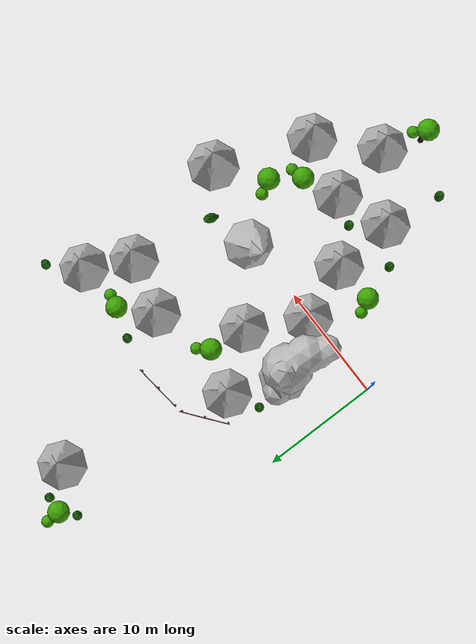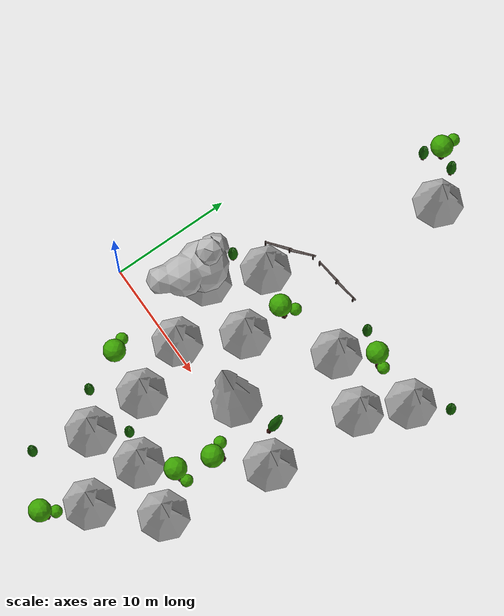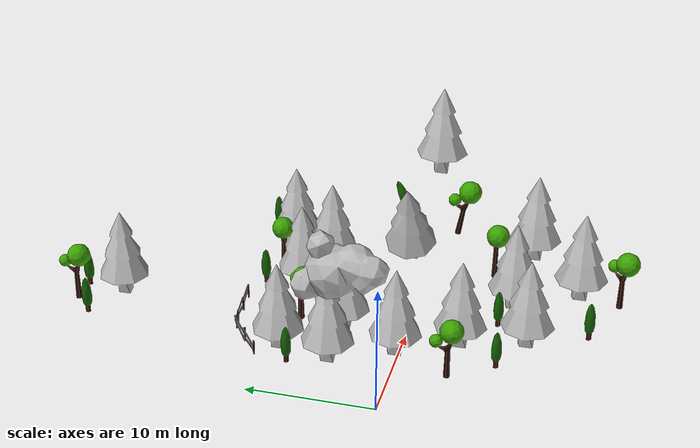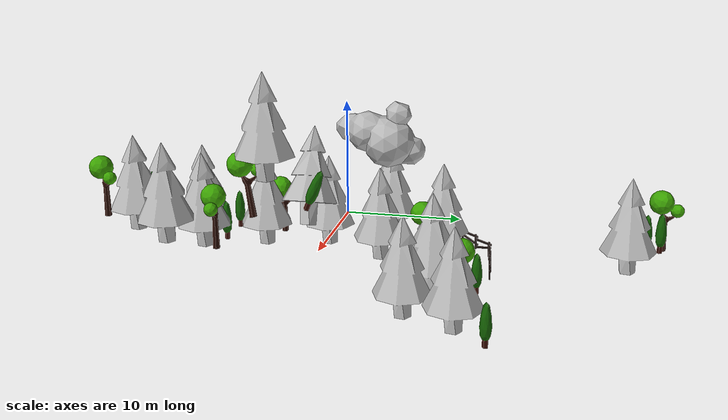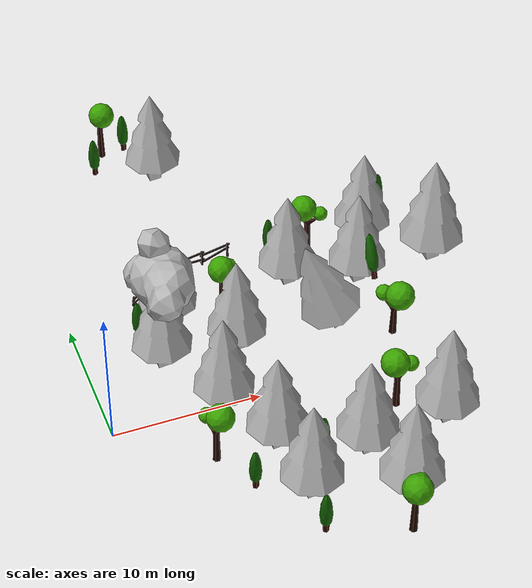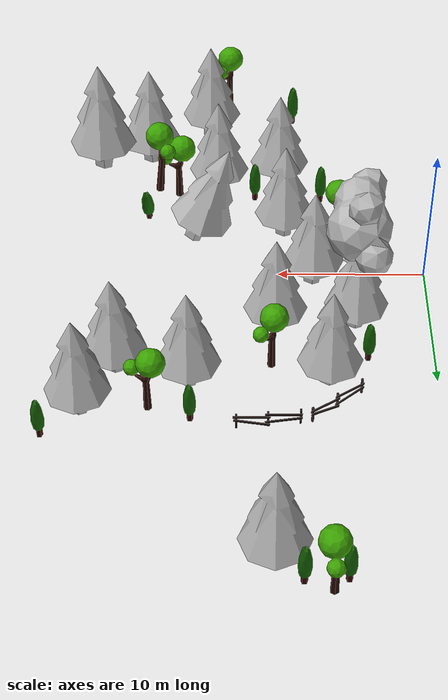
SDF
<sdf version="1.9">
 <world name="test">
  <include><uri>model://rocks_3</uri><name>rocks3</name><pose>5 5 6 0 0 0</pose></include>
  <model name="lowpolytree_1">
   <static>true</static>
   <link name="lowpolytree_1">
    <collision name="lowpolytree_1_collision">
     <geometry>
      <mesh>
       <uri>file:///home/ace-rv/rs1_ros2_ws/install/rs1_environment/share/rs1_environment/models/lowpolytree_1/model://lowpolytree_1/meshes/lowpolytree_1.dae</uri>
      </mesh>
     </geometry>
    </collision>
    <visual name="lowpolytree_1_visual">
     <geometry>
      <mesh>
       <uri>file:///home/ace-rv/rs1_ros2_ws/install/rs1_environment/share/rs1_environment/models/lowpolytree_1/model://lowpolytree_1/meshes/lowpolytree_1.dae</uri>
      </mesh>
     </geometry>
    </visual>
    <inertial>
     <mass>1</mass>
     <inertia><ixx>1</ixx><ixy>0</ixy><ixz>0</ixz><iyy>1</iyy><iyz>0</iyz><izz>1</izz></inertia>
    </inertial>
   </link>
   <pose>5 5 0.320342 0 -0 0</pose>
  </model>
  <model name="lowpolytree_4">
   <static>true</static>
   <link name="lowpolytree_4">
    <collision name="lowpolytree_4_collision">
     <geometry>
      <mesh>
       <uri>file:///home/ace-rv/rs1_ros2_ws/install/rs1_environment/share/rs1_environment/models/lowpolytree_4/model://lowpolytree_4/meshes/lowpolytree_4.dae</uri>
      </mesh>
     </geometry>
    </collision>
    <visual name="lowpolytree_4_visual">
     <geometry>
      <mesh>
       <uri>file:///home/ace-rv/rs1_ros2_ws/install/rs1_environment/share/rs1_environment/models/lowpolytree_4/model://lowpolytree_4/meshes/lowpolytree_4.dae</uri>
      </mesh>
     </geometry>
    </visual>
    <inertial>
     <mass>1</mass>
     <inertia><ixx>1</ixx><ixy>0</ixy><ixz>0</ixz><iyy>1</iyy><iyz>0</iyz><izz>1</izz></inertia>
    </inertial>
   </link>
   <pose>4.28079 8.07195 0 0 -0 0</pose>
  </model>
  <model name="lowpolytree_5">
   <static>true</static>
   <link name="lowpolytree_5">
    <collision name="lowpolytree_5_collision">
     <geometry>
      <mesh>
       <uri>file:///home/ace-rv/rs1_ros2_ws/install/rs1_environment/share/rs1_environment/models/lowpolytree_5/model://lowpolytree_5/meshes/lowpolytree_5.dae</uri>
      </mesh>
     </geometry>
    </collision>
    <visual name="lowpolytree_5_visual">
     <geometry>
      <mesh>
       <uri>file:///home/ace-rv/rs1_ros2_ws/install/rs1_environment/share/rs1_environment/models/lowpolytree_5/model://lowpolytree_5/meshes/lowpolytree_5.dae</uri>
      </mesh>
     </geometry>
    </visual>
    <inertial>
     <mass>1</mass>
     <inertia><ixx>1</ixx><ixy>0</ixy><ixz>0</ixz><iyy>1</iyy><iyz>0</iyz><izz>1</izz></inertia>
    </inertial>
   </link>
   <pose>10.4934 8.71524 0 0 0 -0.761097</pose>
  </model>
  <model name="lowpolytree_1_1">
   <static>true</static>
   <link name="lowpolytree_1">
    <collision name="lowpolytree_1_collision">
     <geometry><mesh><uri>model://lowpolytree_1</uri></mesh></geometry>
    </collision>
    <visual name="lowpolytree_1_visual">
     <geometry>
      <mesh>
       <uri>file:///home/ace-rv/rs1_ros2_ws/install/rs1_environment/share/rs1_environment/models/lowpolytree_1/model://lowpolytree_1/meshes/lowpolytree_1.dae</uri>
      </mesh>
     </geometry>
    </visual>
    <inertial>
     <mass>1</mass>
     <inertia><ixx>1</ixx><ixy>0</ixy><ixz>0</ixz><iyy>1</iyy><iyz>0</iyz><izz>1</izz></inertia>
    </inertial>
   </link>
   <pose>10.2389 5.09046 0 0 -0 0</pose>
  </model>
  <model name="lowpolytree_1_3">
   <static>true</static>
   <link name="lowpolytree_1">
    <collision name="lowpolytree_1_collision">
     <geometry>
      <mesh>
       <uri>file:///home/ace-rv/rs1_ros2_ws/install/rs1_environment/share/rs1_environment/models/lowpolytree_1/model://lowpolytree_1/meshes/lowpolytree_1.dae</uri>
      </mesh>
     </geometry>
    </collision>
    <visual name="lowpolytree_1_visual">
     <geometry>
      <mesh>
       <uri>file:///home/ace-rv/rs1_ros2_ws/install/rs1_environment/share/rs1_environment/models/lowpolytree_1/model://lowpolytree_1/meshes/lowpolytree_1.dae</uri>
      </mesh>
     </geometry>
    </visual>
    <inertial>
     <mass>1</mass>
     <inertia><ixx>1</ixx><ixy>0</ixy><ixz>0</ixz><iyy>1</iyy><iyz>0</iyz><izz>1</izz></inertia>
    </inertial>
   </link>
   <pose>6.82053 9.49544 -0.364963 0 -0 0</pose>
  </model>
  <model name="fence_2_1">
   <static>true</static>
   <link name="fence_2">
    <collision name="fence_2_collision">
     <geometry>
      <mesh>
       <uri>file:///home/ace-rv/rs1_ros2_ws/install/rs1_environment/share/rs1_environment/models/fence_2/model://fence_2/meshes/fence_2.dae</uri>
      </mesh>
     </geometry>
    </collision>
    <visual name="fence_2_visual">
     <geometry>
      <mesh>
       <uri>file:///home/ace-rv/rs1_ros2_ws/install/rs1_environment/share/rs1_environment/models/fence_2/model://fence_2/meshes/fence_2.dae</uri>
      </mesh>
     </geometry>
    </visual>
    <inertial>
     <mass>1</mass>
     <inertia><ixx>1</ixx><ixy>0</ixy><ixz>0</ixz><iyy>1</iyy><iyz>0</iyz><izz>1</izz></inertia>
    </inertial>
   </link>
   <pose>7.99353 13.3338 -0.1802 0 0 -0.906578</pose>
  </model>
  <model name="fence_2_1_1">
   <static>true</static>
   <link name="fence_2">
    <collision name="fence_2_collision">
     <geometry>
      <mesh>
       <uri>file:///home/ace-rv/rs1_ros2_ws/install/rs1_environment/share/rs1_environment/models/fence_2/model://fence_2/meshes/fence_2.dae</uri>
      </mesh>
     </geometry>
    </collision>
    <visual name="fence_2_visual">
     <geometry>
      <mesh>
       <uri>file:///home/ace-rv/rs1_ros2_ws/install/rs1_environment/share/rs1_environment/models/fence_2/model://fence_2/meshes/fence_2.dae</uri>
      </mesh>
     </geometry>
    </visual>
    <inertial>
     <mass>1</mass>
     <inertia><ixx>1</ixx><ixy>0</ixy><ixz>0</ixz><iyy>1</iyy><iyz>0</iyz><izz>1</izz></inertia>
    </inertial>
   </link>
   <pose>12.681 13.9029 -0.1802 0 0 -1.45848</pose>
  </model>
  <model name="lowpolytree_1_5">
   <static>true</static>
   <link name="lowpolytree_1">
    <collision name="lowpolytree_1_collision">
     <geometry>
      <mesh>
       <uri>file:///home/ace-rv/rs1_ros2_ws/install/rs1_environment/share/rs1_environment/models/lowpolytree_1/model://lowpolytree_1/meshes/lowpolytree_1.dae</uri>
      </mesh>
     </geometry>
    </collision>
    <visual name="lowpolytree_1_visual">
     <geometry>
      <mesh>
       <uri>file:///home/ace-rv/rs1_ros2_ws/install/rs1_environment/share/rs1_environment/models/lowpolytree_1/model://lowpolytree_1/meshes/lowpolytree_1.dae</uri>
      </mesh>
     </geometry>
    </visual>
    <inertial>
     <mass>1</mass>
     <inertia><ixx>1</ixx><ixy>0</ixy><ixz>0</ixz><iyy>1</iyy><iyz>0</iyz><izz>1</izz></inertia>
    </inertial>
   </link>
   <pose>9.85882 -9.4139 0.947991 0 -0 0</pose>
  </model>
  <model name="lowpolytree_1_5_1">
   <static>true</static>
   <link name="lowpolytree_1">
    <collision name="lowpolytree_1_collision">
     <geometry>
      <mesh>
       <uri>file:///home/ace-rv/rs1_ros2_ws/install/rs1_environment/share/rs1_environment/models/lowpolytree_1/model://lowpolytree_1/meshes/lowpolytree_1.dae</uri>
      </mesh>
     </geometry>
    </collision>
    <visual name="lowpolytree_1_visual">
     <geometry>
      <mesh>
       <uri>file:///home/ace-rv/rs1_ros2_ws/install/rs1_environment/share/rs1_environment/models/lowpolytree_1/model://lowpolytree_1/meshes/lowpolytree_1.dae</uri>
      </mesh>
     </geometry>
    </visual>
    <inertial>
     <mass>1</mass>
     <inertia><ixx>1</ixx><ixy>0</ixy><ixz>0</ixz><iyy>1</iyy><iyz>0</iyz><izz>1</izz></inertia>
    </inertial>
   </link>
   <pose>14.1887 -7.74744 1.52084 0 -0 0</pose>
  </model>
  <model name="lowpolytree_1_5_1_1">
   <static>true</static>
   <link name="lowpolytree_1">
    <collision name="lowpolytree_1_collision">
     <geometry>
      <mesh>
       <uri>file:///home/ace-rv/rs1_ros2_ws/install/rs1_environment/share/rs1_environment/models/lowpolytree_1/model://lowpolytree_1/meshes/lowpolytree_1.dae</uri>
      </mesh>
     </geometry>
    </collision>
    <visual name="lowpolytree_1_visual">
     <geometry>
      <mesh>
       <uri>file:///home/ace-rv/rs1_ros2_ws/install/rs1_environment/share/rs1_environment/models/lowpolytree_1/model://lowpolytree_1/meshes/lowpolytree_1.dae</uri>
      </mesh>
     </geometry>
    </visual>
    <inertial>
     <mass>1</mass>
     <inertia><ixx>1</ixx><ixy>0</ixy><ixz>0</ixz><iyy>1</iyy><iyz>0</iyz><izz>1</izz></inertia>
    </inertial>
   </link>
   <pose>18.9752 -8.66418 3.4867 0 -0 0</pose>
  </model>
  <model name="lowpolytree_5_1">
   <static>true</static>
   <link name="lowpolytree_5">
    <collision name="lowpolytree_5_collision">
     <geometry>
      <mesh>
       <uri>file:///home/ace-rv/rs1_ros2_ws/install/rs1_environment/share/rs1_environment/models/lowpolytree_5/model://lowpolytree_5/meshes/lowpolytree_5.dae</uri>
      </mesh>
     </geometry>
    </collision>
    <visual name="lowpolytree_5_visual">
     <geometry>
      <mesh>
       <uri>file:///home/ace-rv/rs1_ros2_ws/install/rs1_environment/share/rs1_environment/models/lowpolytree_5/model://lowpolytree_5/meshes/lowpolytree_5.dae</uri>
      </mesh>
     </geometry>
    </visual>
    <inertial>
     <mass>1</mass>
     <inertia><ixx>1</ixx><ixy>0</ixy><ixz>0</ixz><iyy>1</iyy><iyz>0</iyz><izz>1</izz></inertia>
    </inertial>
   </link>
   <pose>13.5833 -15.9725 3.07385 0 0 -0.595097</pose>
  </model>
  <model name="lowpolytree_4_1">
   <static>true</static>
   <link name="lowpolytree_4">
    <collision name="lowpolytree_4_collision">
     <geometry>
      <mesh>
       <uri>file:///home/ace-rv/rs1_ros2_ws/install/rs1_environment/share/rs1_environment/models/lowpolytree_4/model://lowpolytree_4/meshes/lowpolytree_4.dae</uri>
      </mesh>
     </geometry>
    </collision>
    <visual name="lowpolytree_4_visual">
     <geometry>
      <mesh>
       <uri>file:///home/ace-rv/rs1_ros2_ws/install/rs1_environment/share/rs1_environment/models/lowpolytree_4/model://lowpolytree_4/meshes/lowpolytree_4.dae</uri>
      </mesh>
     </geometry>
    </visual>
    <inertial>
     <mass>1</mass>
     <inertia><ixx>1</ixx><ixy>0</ixy><ixz>0</ixz><iyy>1</iyy><iyz>0</iyz><izz>1</izz></inertia>
    </inertial>
   </link>
   <pose>11.6205 -6.9588 1.12121 0 -0 0</pose>
  </model>
  <model name="lowpolytree_4_3">
   <static>true</static>
   <link name="lowpolytree_4">
    <collision name="lowpolytree_4_collision">
     <geometry>
      <mesh>
       <uri>file:///home/ace-rv/rs1_ros2_ws/install/rs1_environment/share/rs1_environment/models/lowpolytree_4/model://lowpolytree_4/meshes/lowpolytree_4.dae</uri>
      </mesh>
     </geometry>
    </collision>
    <visual name="lowpolytree_4_visual">
     <geometry>
      <mesh>
       <uri>file:///home/ace-rv/rs1_ros2_ws/install/rs1_environment/share/rs1_environment/models/lowpolytree_4/model://lowpolytree_4/meshes/lowpolytree_4.dae</uri>
      </mesh>
     </geometry>
    </visual>
    <inertial>
     <mass>1</mass>
     <inertia><ixx>1</ixx><ixy>0</ixy><ixz>0</ixz><iyy>1</iyy><iyz>0</iyz><izz>1</izz></inertia>
    </inertial>
   </link>
   <pose>8.85614 -14.0887 2.83124 0 -0 0</pose>
  </model>
  <model name="lowpolytree_1_5_1_1_1">
   <static>true</static>
   <link name="lowpolytree_1">
    <collision name="lowpolytree_1_collision">
     <geometry>
      <mesh>
       <uri>file:///home/ace-rv/rs1_ros2_ws/install/rs1_environment/share/rs1_environment/models/lowpolytree_1/model://lowpolytree_1/meshes/lowpolytree_1.dae</uri>
      </mesh>
     </geometry>
    </collision>
    <visual name="lowpolytree_1_visual">
     <geometry>
      <mesh>
       <uri>file:///home/ace-rv/rs1_ros2_ws/install/rs1_environment/share/rs1_environment/models/lowpolytree_1/model://lowpolytree_1/meshes/lowpolytree_1.dae</uri>
      </mesh>
     </geometry>
    </visual>
    <inertial>
     <mass>1</mass>
     <inertia><ixx>1</ixx><ixy>0</ixy><ixz>0</ixz><iyy>1</iyy><iyz>0</iyz><izz>1</izz></inertia>
    </inertial>
   </link>
   <pose>14.8335 -12.8151 2.75438 0 -0 0</pose>
  </model>
  <model name="lowpolytree_5_1_1">
   <static>true</static>
   <link name="lowpolytree_5">
    <collision name="lowpolytree_5_collision">
     <geometry>
      <mesh>
       <uri>file:///home/ace-rv/rs1_ros2_ws/install/rs1_environment/share/rs1_environment/models/lowpolytree_5/model://lowpolytree_5/meshes/lowpolytree_5.dae</uri>
      </mesh>
     </geometry>
    </collision>
    <visual name="lowpolytree_5_visual">
     <geometry>
      <mesh>
       <uri>file:///home/ace-rv/rs1_ros2_ws/install/rs1_environment/share/rs1_environment/models/lowpolytree_5/model://lowpolytree_5/meshes/lowpolytree_5.dae</uri>
      </mesh>
     </geometry>
    </visual>
    <inertial>
     <mass>1</mass>
     <inertia><ixx>1</ixx><ixy>0</ixy><ixz>0</ixz><iyy>1</iyy><iyz>0</iyz><izz>1</izz></inertia>
    </inertial>
   </link>
   <pose>16.9455 -5.77316 2.38542 0 0 -1.38507</pose>
  </model>
  <model name="lowpolytree_1_5_1_2">
   <static>true</static>
   <link name="lowpolytree_1">
    <collision name="lowpolytree_1_collision">
     <geometry>
      <mesh>
       <uri>file:///home/ace-rv/rs1_ros2_ws/install/rs1_environment/share/rs1_environment/models/lowpolytree_1/model://lowpolytree_1/meshes/lowpolytree_1.dae</uri>
      </mesh>
     </geometry>
    </collision>
    <visual name="lowpolytree_1_visual">
     <geometry>
      <mesh>
       <uri>file:///home/ace-rv/rs1_ros2_ws/install/rs1_environment/share/rs1_environment/models/lowpolytree_1/model://lowpolytree_1/meshes/lowpolytree_1.dae</uri>
      </mesh>
     </geometry>
    </visual>
    <inertial>
     <mass>1</mass>
     <inertia><ixx>1</ixx><ixy>0</ixy><ixz>0</ixz><iyy>1</iyy><iyz>0</iyz><izz>1</izz></inertia>
    </inertial>
   </link>
   <pose>7.6573 0.353314 -0.004936 0 -0 0</pose>
  </model>
  <model name="lowpolytree_1_5_1_4">
   <static>true</static>
   <link name="lowpolytree_1">
    <collision name="lowpolytree_1_collision">
     <geometry>
      <mesh>
       <uri>file:///home/ace-rv/rs1_ros2_ws/install/rs1_environment/share/rs1_environment/models/lowpolytree_1/model://lowpolytree_1/meshes/lowpolytree_1.dae</uri>
      </mesh>
     </geometry>
    </collision>
    <visual name="lowpolytree_1_visual">
     <geometry>
      <mesh>
       <uri>file:///home/ace-rv/rs1_ros2_ws/install/rs1_environment/share/rs1_environment/models/lowpolytree_1/model://lowpolytree_1/meshes/lowpolytree_1.dae</uri>
      </mesh>
     </geometry>
    </visual>
    <inertial>
     <mass>1</mass>
     <inertia><ixx>1</ixx><ixy>0</ixy><ixz>0</ixz><iyy>1</iyy><iyz>0</iyz><izz>1</izz></inertia>
    </inertial>
   </link>
   <pose>9.53683 -4.33958 0.291374 0 -0 0</pose>
  </model>
  <model name="lowpolytree_5_1_1_1">
   <static>true</static>
   <link name="lowpolytree_5">
    <collision name="lowpolytree_5_collision">
     <geometry>
      <mesh>
       <uri>file:///home/ace-rv/rs1_ros2_ws/install/rs1_environment/share/rs1_environment/models/lowpolytree_5/model://lowpolytree_5/meshes/lowpolytree_5.dae</uri>
      </mesh>
     </geometry>
    </collision>
    <visual name="lowpolytree_5_visual">
     <geometry>
      <mesh>
       <uri>file:///home/ace-rv/rs1_ros2_ws/install/rs1_environment/share/rs1_environment/models/lowpolytree_5/model://lowpolytree_5/meshes/lowpolytree_5.dae</uri>
      </mesh>
     </geometry>
    </visual>
    <inertial>
     <mass>1</mass>
     <inertia><ixx>1</ixx><ixy>0</ixy><ixz>0</ixz><iyy>1</iyy><iyz>0</iyz><izz>1</izz></inertia>
    </inertial>
   </link>
   <pose>5.58057 -4.08361 -0.101406 0 -0 0.475917</pose>
  </model>
  <model name="lowpolytree_4_1_1_4">
   <static>true</static>
   <link name="lowpolytree_4">
    <collision name="lowpolytree_4_collision">
     <geometry>
      <mesh>
       <uri>file:///home/ace-rv/rs1_ros2_ws/install/rs1_environment/share/rs1_environment/models/lowpolytree_4/model://lowpolytree_4/meshes/lowpolytree_4.dae</uri>
      </mesh>
     </geometry>
    </collision>
    <visual name="lowpolytree_4_visual">
     <geometry>
      <mesh>
       <uri>file:///home/ace-rv/rs1_ros2_ws/install/rs1_environment/share/rs1_environment/models/lowpolytree_4/model://lowpolytree_4/meshes/lowpolytree_4.dae</uri>
      </mesh>
     </geometry>
    </visual>
    <inertial>
     <mass>1</mass>
     <inertia><ixx>1</ixx><ixy>0</ixy><ixz>0</ixz><iyy>1</iyy><iyz>0</iyz><izz>1</izz></inertia>
    </inertial>
   </link>
   <pose>6.89279 -7.5714 0.485679 0 -0 0</pose>
  </model>
  <model name="lowpolytree_5_1_1_1_2">
   <static>true</static>
   <link name="lowpolytree_5">
    <collision name="lowpolytree_5_collision">
     <geometry>
      <mesh>
       <uri>file:///home/ace-rv/rs1_ros2_ws/install/rs1_environment/share/rs1_environment/models/lowpolytree_5/model://lowpolytree_5/meshes/lowpolytree_5.dae</uri>
      </mesh>
     </geometry>
    </collision>
    <visual name="lowpolytree_5_visual">
     <geometry>
      <mesh>
       <uri>file:///home/ace-rv/rs1_ros2_ws/install/rs1_environment/share/rs1_environment/models/lowpolytree_5/model://lowpolytree_5/meshes/lowpolytree_5.dae</uri>
      </mesh>
     </geometry>
    </visual>
    <inertial>
     <mass>1</mass>
     <inertia><ixx>1</ixx><ixy>0</ixy><ixz>0</ixz><iyy>1</iyy><iyz>0</iyz><izz>1</izz></inertia>
    </inertial>
   </link>
   <pose>7.2404 26.4842 1.1041 0 -0 0.022879</pose>
  </model>
  <model name="lowpolytree_4_5">
   <static>true</static>
   <link name="lowpolytree_4">
    <collision name="lowpolytree_4_collision">
     <geometry>
      <mesh>
       <uri>file:///home/ace-rv/rs1_ros2_ws/install/rs1_environment/share/rs1_environment/models/lowpolytree_4/model://lowpolytree_4/meshes/lowpolytree_4.dae</uri>
      </mesh>
     </geometry>
    </collision>
    <visual name="lowpolytree_4_visual">
     <geometry>
      <mesh>
       <uri>file:///home/ace-rv/rs1_ros2_ws/install/rs1_environment/share/rs1_environment/models/lowpolytree_4/model://lowpolytree_4/meshes/lowpolytree_4.dae</uri>
      </mesh>
     </geometry>
    </visual>
    <inertial>
     <mass>1</mass>
     <inertia><ixx>1</ixx><ixy>0</ixy><ixz>0</ixz><iyy>1</iyy><iyz>0</iyz><izz>1</izz></inertia>
    </inertial>
   </link>
   <pose>8.8506 26.1759 1.46468 0 -0 0</pose>
  </model>
  <model name="lowpolytree_4_7">
   <static>true</static>
   <link name="lowpolytree_4">
    <collision name="lowpolytree_4_collision">
     <geometry>
      <mesh>
       <uri>file:///home/ace-rv/rs1_ros2_ws/install/rs1_environment/share/rs1_environment/models/lowpolytree_4/model://lowpolytree_4/meshes/lowpolytree_4.dae</uri>
      </mesh>
     </geometry>
    </collision>
    <visual name="lowpolytree_4_visual">
     <geometry>
      <mesh>
       <uri>file:///home/ace-rv/rs1_ros2_ws/install/rs1_environment/share/rs1_environment/models/lowpolytree_4/model://lowpolytree_4/meshes/lowpolytree_4.dae</uri>
      </mesh>
     </geometry>
    </visual>
    <inertial>
     <mass>1</mass>
     <inertia><ixx>1</ixx><ixy>0</ixy><ixz>0</ixz><iyy>1</iyy><iyz>0</iyz><izz>1</izz></inertia>
    </inertial>
   </link>
   <pose>6.35028 25.3174 0.483148 0 -0 0</pose>
  </model>
  <model name="lowpolytree_1_7_5_2">
   <static>true</static>
   <link name="lowpolytree_1">
    <collision name="lowpolytree_1_collision">
     <geometry>
      <mesh>
       <uri>file:///home/ace-rv/rs1_ros2_ws/install/rs1_environment/share/rs1_environment/models/lowpolytree_1/model://lowpolytree_1/meshes/lowpolytree_1.dae</uri>
      </mesh>
     </geometry>
    </collision>
    <visual name="lowpolytree_1_visual">
     <geometry>
      <mesh>
       <uri>file:///home/ace-rv/rs1_ros2_ws/install/rs1_environment/share/rs1_environment/models/lowpolytree_1/model://lowpolytree_1/meshes/lowpolytree_1.dae</uri>
      </mesh>
     </geometry>
    </visual>
    <inertial>
     <mass>1</mass>
     <inertia><ixx>1</ixx><ixy>0</ixy><ixz>0</ixz><iyy>1</iyy><iyz>0</iyz><izz>1</izz></inertia>
    </inertial>
   </link>
   <pose>10.3878 23.8141 0.335544 0 -0 0</pose>
  </model>
  <model name="lowpolytree_1_1_1">
   <static>true</static>
   <link name="lowpolytree_1">
    <collision name="lowpolytree_1_collision">
     <geometry>
      <mesh>
       <uri>file:///home/ace-rv/rs1_ros2_ws/install/rs1_environment/share/rs1_environment/models/lowpolytree_1/model://lowpolytree_1/meshes/lowpolytree_1.dae</uri>
      </mesh>
     </geometry>
    </collision>
    <visual name="lowpolytree_1_visual">
     <geometry>
      <mesh>
       <uri>file:///home/ace-rv/rs1_ros2_ws/install/rs1_environment/share/rs1_environment/models/lowpolytree_1/model://lowpolytree_1/meshes/lowpolytree_1.dae</uri>
      </mesh>
     </geometry>
    </visual>
    <inertial>
     <mass>1</mass>
     <inertia><ixx>1</ixx><ixy>0</ixy><ixz>0</ixz><iyy>1</iyy><iyz>0</iyz><izz>1</izz></inertia>
    </inertial>
   </link>
   <pose>15.7121 10.0652 0 0 -0 0</pose>
  </model>
  <model name="lowpolytree_1_1_2">
   <static>true</static>
   <link name="lowpolytree_1">
    <collision name="lowpolytree_1_collision">
     <geometry>
      <mesh>
       <uri>file:///home/ace-rv/rs1_ros2_ws/install/rs1_environment/share/rs1_environment/models/lowpolytree_1/model://lowpolytree_1/meshes/lowpolytree_1.dae</uri>
      </mesh>
     </geometry>
    </collision>
    <visual name="lowpolytree_1_visual">
     <geometry>
      <mesh>
       <uri>file:///home/ace-rv/rs1_ros2_ws/install/rs1_environment/share/rs1_environment/models/lowpolytree_1/model://lowpolytree_1/meshes/lowpolytree_1.dae</uri>
      </mesh>
     </geometry>
    </visual>
    <inertial>
     <mass>1</mass>
     <inertia><ixx>1</ixx><ixy>0</ixy><ixz>0</ixz><iyy>1</iyy><iyz>0</iyz><izz>1</izz></inertia>
    </inertial>
   </link>
   <pose>22.3446 12.5183 0.000914 0 -0 0</pose>
  </model>
  <model name="lowpolytree_1_1_3">
   <static>true</static>
   <link name="lowpolytree_1">
    <collision name="lowpolytree_1_collision">
     <geometry>
      <mesh>
       <uri>file:///home/ace-rv/rs1_ros2_ws/install/rs1_environment/share/rs1_environment/models/lowpolytree_1/model://lowpolytree_1/meshes/lowpolytree_1.dae</uri>
      </mesh>
     </geometry>
    </collision>
    <visual name="lowpolytree_1_visual">
     <geometry>
      <mesh>
       <uri>file:///home/ace-rv/rs1_ros2_ws/install/rs1_environment/share/rs1_environment/models/lowpolytree_1/model://lowpolytree_1/meshes/lowpolytree_1.dae</uri>
      </mesh>
     </geometry>
    </visual>
    <inertial>
     <mass>1</mass>
     <inertia><ixx>1</ixx><ixy>0</ixy><ixz>0</ixz><iyy>1</iyy><iyz>0</iyz><izz>1</izz></inertia>
    </inertial>
   </link>
   <pose>20.4233 8.76522 -0.137972 0 -0 0</pose>
  </model>
  <model name="lowpolytree_5_3">
   <static>true</static>
   <link name="lowpolytree_5">
    <collision name="lowpolytree_5_collision">
     <geometry>
      <mesh>
       <uri>file:///home/ace-rv/rs1_ros2_ws/install/rs1_environment/share/rs1_environment/models/lowpolytree_5/model://lowpolytree_5/meshes/lowpolytree_5.dae</uri>
      </mesh>
     </geometry>
    </collision>
    <visual name="lowpolytree_5_visual">
     <geometry>
      <mesh>
       <uri>file:///home/ace-rv/rs1_ros2_ws/install/rs1_environment/share/rs1_environment/models/lowpolytree_5/model://lowpolytree_5/meshes/lowpolytree_5.dae</uri>
      </mesh>
     </geometry>
    </visual>
    <inertial>
     <mass>1</mass>
     <inertia><ixx>1</ixx><ixy>0</ixy><ixz>0</ixz><iyy>1</iyy><iyz>0</iyz><izz>1</izz></inertia>
    </inertial>
   </link>
   <pose>18.1447 12.4691 0 0 0 -1.76285</pose>
  </model>
  <model name="lowpolytree_4_1_2">
   <static>true</static>
   <link name="lowpolytree_4">
    <collision name="lowpolytree_4_collision">
     <geometry>
      <mesh>
       <uri>file:///home/ace-rv/rs1_ros2_ws/install/rs1_environment/share/rs1_environment/models/lowpolytree_4/model://lowpolytree_4/meshes/lowpolytree_4.dae</uri>
      </mesh>
     </geometry>
    </collision>
    <visual name="lowpolytree_4_visual">
     <geometry>
      <mesh>
       <uri>file:///home/ace-rv/rs1_ros2_ws/install/rs1_environment/share/rs1_environment/models/lowpolytree_4/model://lowpolytree_4/meshes/lowpolytree_4.dae</uri>
      </mesh>
     </geometry>
    </visual>
    <inertial>
     <mass>1</mass>
     <inertia><ixx>1</ixx><ixy>0</ixy><ixz>0</ixz><iyy>1</iyy><iyz>0</iyz><izz>1</izz></inertia>
    </inertial>
   </link>
   <pose>24.5198 14.8585 0.102017 0 -0 0</pose>
  </model>
  <model name="lowpolytree_4_1_3">
   <static>true</static>
   <link name="lowpolytree_4">
    <collision name="lowpolytree_4_collision">
     <geometry>
      <mesh>
       <uri>file:///home/ace-rv/rs1_ros2_ws/install/rs1_environment/share/rs1_environment/models/lowpolytree_4/model://lowpolytree_4/meshes/lowpolytree_4.dae</uri>
      </mesh>
     </geometry>
    </collision>
    <visual name="lowpolytree_4_visual">
     <geometry>
      <mesh>
       <uri>file:///home/ace-rv/rs1_ros2_ws/install/rs1_environment/share/rs1_environment/models/lowpolytree_4/model://lowpolytree_4/meshes/lowpolytree_4.dae</uri>
      </mesh>
     </geometry>
    </visual>
    <inertial>
     <mass>1</mass>
     <inertia><ixx>1</ixx><ixy>0</ixy><ixz>0</ixz><iyy>1</iyy><iyz>0</iyz><izz>1</izz></inertia>
    </inertial>
   </link>
   <pose>15.5119 13.2248 -0.193686 0 -0 0</pose>
  </model>
  <model name="lowpolytree_1_1_4">
   <static>true</static>
   <link name="lowpolytree_1">
    <collision name="lowpolytree_1_collision">
     <geometry>
      <mesh>
       <uri>file:///home/ace-rv/rs1_ros2_ws/install/rs1_environment/share/rs1_environment/models/lowpolytree_1/model://lowpolytree_1/meshes/lowpolytree_1.dae</uri>
      </mesh>
     </geometry>
    </collision>
    <visual name="lowpolytree_1_visual">
     <geometry>
      <mesh>
       <uri>file:///home/ace-rv/rs1_ros2_ws/install/rs1_environment/share/rs1_environment/models/lowpolytree_1/model://lowpolytree_1/meshes/lowpolytree_1.dae</uri>
      </mesh>
     </geometry>
    </visual>
    <inertial>
     <mass>1</mass>
     <inertia><ixx>1</ixx><ixy>0</ixy><ixz>0</ixz><iyy>1</iyy><iyz>0</iyz><izz>1</izz></inertia>
    </inertial>
   </link>
   <pose>21.2663 -0.327834 9.22497 0 -0 0</pose>
  </model>
  <model name="lowpolytree_1_1_4_1">
   <static>true</static>
   <link name="lowpolytree_1">
    <collision name="lowpolytree_1_collision">
     <geometry>
      <mesh>
       <uri>file:///home/ace-rv/rs1_ros2_ws/install/rs1_environment/share/rs1_environment/models/lowpolytree_1/model://lowpolytree_1/meshes/lowpolytree_1.dae</uri>
      </mesh>
     </geometry>
    </collision>
    <visual name="lowpolytree_1_visual">
     <geometry>
      <mesh>
       <uri>file:///home/ace-rv/rs1_ros2_ws/install/rs1_environment/share/rs1_environment/models/lowpolytree_1/model://lowpolytree_1/meshes/lowpolytree_1.dae</uri>
      </mesh>
     </geometry>
    </visual>
    <inertial>
     <mass>1</mass>
     <inertia><ixx>1</ixx><ixy>0</ixy><ixz>0</ixz><iyy>1</iyy><iyz>0</iyz><izz>1</izz></inertia>
    </inertial>
   </link>
   <pose>15.6797 0.857048 4.2295 0 -0.339779 0</pose>
  </model>
  <model name="lowpolytree_4_1_1_1_1">
   <static>true</static>
   <link name="lowpolytree_4">
    <collision name="lowpolytree_4_collision">
     <geometry>
      <mesh>
       <uri>file:///home/ace-rv/rs1_ros2_ws/install/rs1_environment/share/rs1_environment/models/lowpolytree_4/model://lowpolytree_4/meshes/lowpolytree_4.dae</uri>
      </mesh>
     </geometry>
    </collision>
    <visual name="lowpolytree_4_visual">
     <geometry>
      <mesh>
       <uri>file:///home/ace-rv/rs1_ros2_ws/install/rs1_environment/share/rs1_environment/models/lowpolytree_4/model://lowpolytree_4/meshes/lowpolytree_4.dae</uri>
      </mesh>
     </geometry>
    </visual>
    <inertial>
     <mass>1</mass>
     <inertia><ixx>1</ixx><ixy>0</ixy><ixz>0</ixz><iyy>1</iyy><iyz>0</iyz><izz>1</izz></inertia>
    </inertial>
   </link>
   <pose>18.4441 1.55779 6.33671 -0.383807 0 0</pose>
  </model>
  <model name="lowpolytree_5_1_1_2">
   <static>true</static>
   <link name="lowpolytree_5">
    <collision name="lowpolytree_5_collision">
     <geometry>
      <mesh>
       <uri>file:///home/ace-rv/rs1_ros2_ws/install/rs1_environment/share/rs1_environment/models/lowpolytree_5/model://lowpolytree_5/meshes/lowpolytree_5.dae</uri>
      </mesh>
     </geometry>
    </collision>
    <visual name="lowpolytree_5_visual">
     <geometry>
      <mesh>
       <uri>file:///home/ace-rv/rs1_ros2_ws/install/rs1_environment/share/rs1_environment/models/lowpolytree_5/model://lowpolytree_5/meshes/lowpolytree_5.dae</uri>
      </mesh>
     </geometry>
    </visual>
    <inertial>
     <mass>1</mass>
     <inertia><ixx>1</ixx><ixy>0</ixy><ixz>0</ixz><iyy>1</iyy><iyz>0</iyz><izz>1</izz></inertia>
    </inertial>
   </link>
   <pose>18.0211 -2.43945 5.40075 0.106796 -0.161645 0.548573</pose>
  </model>
 </world>
</sdf>
